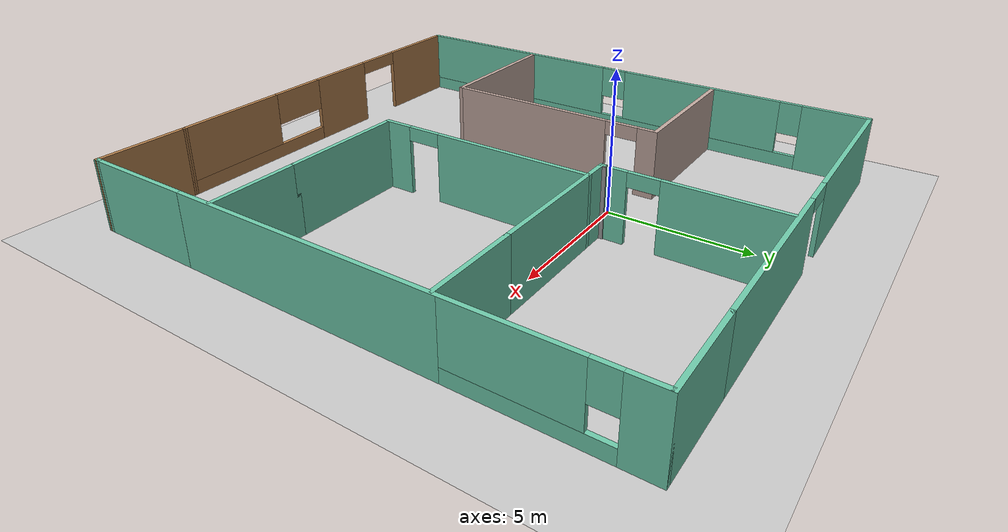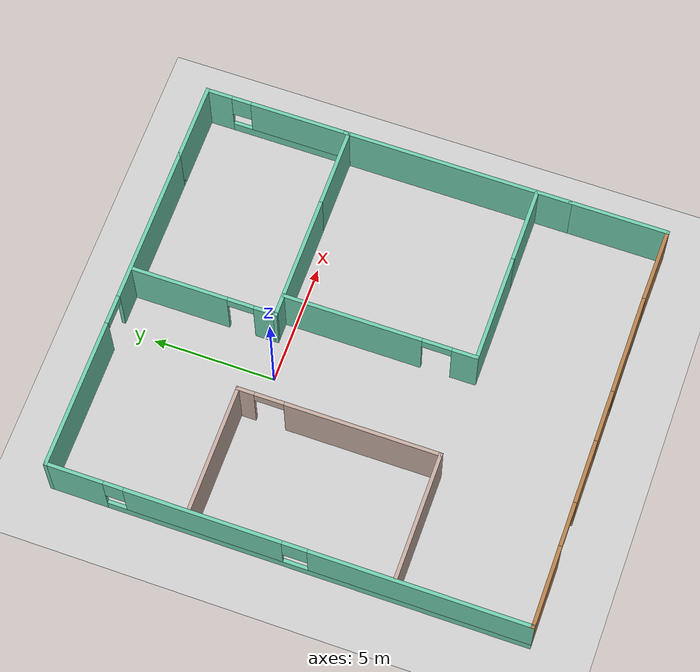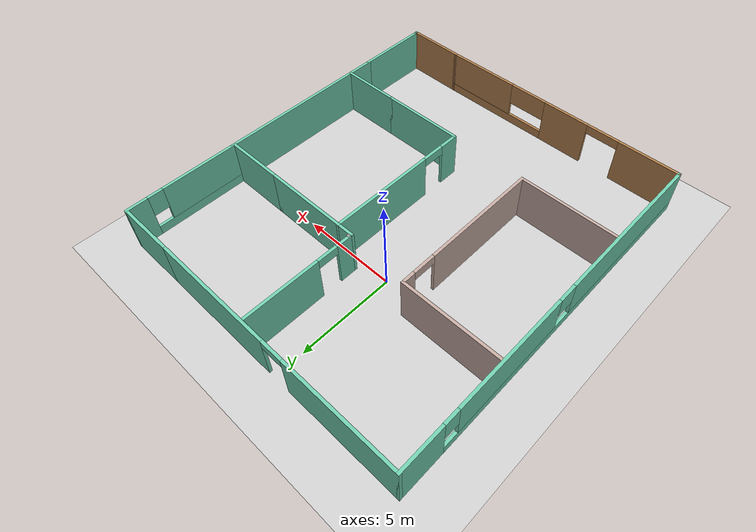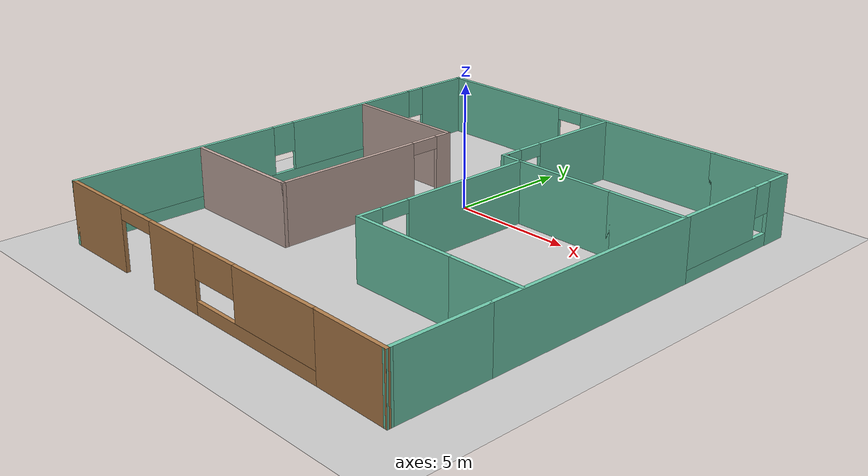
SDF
<sdf version="1.6">
 <world name="default">
  <light name="sun" type="directional">
   <pose>0 0 10 0 -0 0</pose>
   <diffuse>0.8 0.8 0.8 1</diffuse>
   <specular>0.2 0.2 0.2 1</specular>
   <attenuation>
    <range>1000</range>
    <constant>0.9</constant>
    <linear>0.01</linear>
    <quadratic>0.001</quadratic>
   </attenuation>
   <direction>-0.5 0.1 -0.9</direction>
  </light>
  <model name="ground_plane">
   <static>1</static>
   <link name="link">
    <collision name="collision">
     <geometry><plane><normal>0 0 1</normal><size>100 100</size></plane></geometry>
     <surface>
      <contact><collide_bitmask>65535</collide_bitmask></contact>
      <friction><ode><mu>100</mu><mu2>50</mu2></ode></friction>
     </surface>
    </collision>
    <visual name="visual">
     <cast_shadows>0</cast_shadows>
     <geometry><plane><normal>0 0 1</normal><size>100 100</size></plane></geometry>
     <material>
      <script><uri>file://media/materials/scripts/gazebo.material</uri><name>Gazebo/Grey</name></script>
     </material>
    </visual>
   </link>
  </model>
  <gravity>0 0 -9.8</gravity>
  <magnetic_field>6e-06 2.3e-05 -4.2e-05</magnetic_field>
  <atmosphere type="adiabatic"/>
  <physics name="default_physics" default="0" type="ode">
   <max_step_size>0.001</max_step_size>
   <real_time_factor>1</real_time_factor>
   <real_time_update_rate>1000</real_time_update_rate>
  </physics>
  <scene><ambient>0.4 0.4 0.4 1</ambient><background>0.7 0.7 0.7 1</background><shadows>1</shadows></scene>
  <audio><device>default</device></audio>
  <spherical_coordinates>
   <surface_model>EARTH_WGS84</surface_model>
   <latitude_deg>0</latitude_deg>
   <longitude_deg>0</longitude_deg>
   <elevation>0</elevation>
   <heading_deg>0</heading_deg>
  </spherical_coordinates>
  <model name="building">
   <pose>1.49212 -3.13616 0 0 -0 0</pose>
   <link name="Wall_1">
    <pose>-1.5506 9.5756 0 0 -0 0</pose>
    <visual name="Wall_1_Visual_0">
     <pose>-3.90949 0 1.25 0 -0 0</pose>
     <geometry><box><size>6.18102 0.15 2.5</size></box></geometry>
     <material>
      <script><uri>file://media/materials/scripts/gazebo.material</uri><name>Gazebo/Grey</name></script>
      <ambient>0.435294 0.796078 0.67451 1</ambient>
     </material>
     <meta><layer>0</layer></meta>
    </visual>
    <collision name="Wall_1_Collision_0">
     <geometry><box><size>6.18102 0.15 2.5</size></box></geometry>
     <pose>-3.90949 0 1.25 0 -0 0</pose>
    </collision>
    <visual name="Wall_1_Visual_1">
     <pose>3.69051 0 1.25 0 -0 0</pose>
     <geometry><box><size>6.61898 0.15 2.5</size></box></geometry>
     <material>
      <script><uri>file://media/materials/scripts/gazebo.material</uri><name>Gazebo/Grey</name></script>
      <ambient>0.435294 0.796078 0.67451 1</ambient>
     </material>
     <meta><layer>0</layer></meta>
    </visual>
    <collision name="Wall_1_Collision_1">
     <geometry><box><size>6.61898 0.15 2.5</size></box></geometry>
     <pose>3.69051 0 1.25 0 -0 0</pose>
    </collision>
    <visual name="Wall_1_Visual_2">
     <pose>-0.218983 0 2.25 0 -0 0</pose>
     <geometry><box><size>1.2 0.15 0.5</size></box></geometry>
     <material>
      <script><uri>file://media/materials/scripts/gazebo.material</uri><name>Gazebo/Grey</name></script>
      <ambient>0.435294 0.796078 0.67451 1</ambient>
     </material>
     <meta><layer>0</layer></meta>
    </visual>
    <collision name="Wall_1_Collision_2">
     <geometry><box><size>1.2 0.15 0.5</size></box></geometry>
     <pose>-0.218983 0 2.25 0 -0 0</pose>
    </collision>
   </link>
   <link name="Wall_16">
    <pose>-1.5506 -9.5244 0 0 -0 0</pose>
    <visual name="Wall_16_Visual_0">
     <pose>-5.32538 0 1.25 0 -0 0</pose>
     <geometry><box><size>3.34923 0.15 2.5</size></box></geometry>
     <material>
      <script><uri>file://media/materials/scripts/gazebo.material</uri><name>Gazebo/Wood</name></script>
      <ambient>1 1 1 1</ambient>
     </material>
     <meta><layer>0</layer></meta>
    </visual>
    <collision name="Wall_16_Collision_0">
     <geometry><box><size>3.34923 0.15 2.5</size></box></geometry>
     <pose>-5.32538 0 1.25 0 -0 0</pose>
    </collision>
    <visual name="Wall_16_Visual_1">
     <pose>-0.542656 0 1.25 0 -0 0</pose>
     <geometry><box><size>2.60823 0.15 2.5</size></box></geometry>
     <material>
      <script><uri>file://media/materials/scripts/gazebo.material</uri><name>Gazebo/Wood</name></script>
      <ambient>1 1 1 1</ambient>
     </material>
     <meta><layer>0</layer></meta>
    </visual>
    <collision name="Wall_16_Collision_1">
     <geometry><box><size>2.60823 0.15 2.5</size></box></geometry>
     <pose>-0.542656 0 1.25 0 -0 0</pose>
    </collision>
    <visual name="Wall_16_Visual_2">
     <pose>3.88073 0 0.25 0 -0 0</pose>
     <geometry><box><size>6.23854 0.15 0.5</size></box></geometry>
     <material>
      <script><uri>file://media/materials/scripts/gazebo.material</uri><name>Gazebo/Wood</name></script>
      <ambient>1 1 1 1</ambient>
     </material>
     <meta><layer>0</layer></meta>
    </visual>
    <collision name="Wall_16_Collision_2">
     <geometry><box><size>6.23854 0.15 0.5</size></box></geometry>
     <pose>3.88073 0 0.25 0 -0 0</pose>
    </collision>
    <visual name="Wall_16_Visual_3">
     <pose>4.94573 0 1.5 0 -0 0</pose>
     <geometry><box><size>4.10853 0.15 2</size></box></geometry>
     <material>
      <script><uri>file://media/materials/scripts/gazebo.material</uri><name>Gazebo/Wood</name></script>
      <ambient>1 1 1 1</ambient>
     </material>
     <meta><layer>0</layer></meta>
    </visual>
    <collision name="Wall_16_Collision_3">
     <geometry><box><size>4.10853 0.15 2</size></box></geometry>
     <pose>4.94573 0 1.5 0 -0 0</pose>
    </collision>
    <visual name="Wall_16_Visual_4">
     <pose>1.82646 0 1.9 0 -0 0</pose>
     <geometry><box><size>2.13001 0.15 1.2</size></box></geometry>
     <material>
      <script><uri>file://media/materials/scripts/gazebo.material</uri><name>Gazebo/Wood</name></script>
      <ambient>1 1 1 1</ambient>
     </material>
     <meta><layer>0</layer></meta>
    </visual>
    <collision name="Wall_16_Collision_4">
     <geometry><box><size>2.13001 0.15 1.2</size></box></geometry>
     <pose>1.82646 0 1.9 0 -0 0</pose>
    </collision>
    <visual name="Wall_16_Visual_5">
     <pose>-2.74877 0 2.25 0 -0 0</pose>
     <geometry><box><size>1.804 0.15 0.5</size></box></geometry>
     <material>
      <script><uri>file://media/materials/scripts/gazebo.material</uri><name>Gazebo/Wood</name></script>
      <ambient>1 1 1 1</ambient>
     </material>
     <meta><layer>0</layer></meta>
    </visual>
    <collision name="Wall_16_Collision_5">
     <geometry><box><size>1.804 0.15 0.5</size></box></geometry>
     <pose>-2.74877 0 2.25 0 -0 0</pose>
    </collision>
   </link>
   <link name="Wall_25">
    <collision name="Wall_25_Collision">
     <geometry><box><size>5.25 0.15 2.5</size></box></geometry>
     <pose>0 0 1.25 0 -0 0</pose>
    </collision>
    <visual name="Wall_25_Visual">
     <pose>0 0 1.25 0 -0 0</pose>
     <geometry><box><size>5.25 0.15 2.5</size></box></geometry>
     <material>
      <script><uri>file://media/materials/scripts/gazebo.material</uri><name>Gazebo/Grey</name></script>
      <ambient>0.760784 0.662745 0.627451 1</ambient>
     </material>
     <meta><layer>0</layer></meta>
    </visual>
    <pose>-5.79475 3.883 0 0 -0 3.14159</pose>
   </link>
   <link name="Wall_27">
    <collision name="Wall_27_Collision">
     <geometry><box><size>4.5 0.15 2.5</size></box></geometry>
     <pose>0 0 1.25 0 -0 0</pose>
    </collision>
    <visual name="Wall_27_Visual">
     <pose>0 0 1.25 0 -0 0</pose>
     <geometry><box><size>4.5 0.15 2.5</size></box></geometry>
     <material>
      <script><uri>file://media/materials/scripts/gazebo.material</uri><name>Gazebo/Grey</name></script>
      <ambient>0.435294 0.796078 0.67451 1</ambient>
     </material>
     <meta><layer>0</layer></meta>
    </visual>
    <pose>3.14247 3.59795 0 0 -0 0</pose>
   </link>
   <link name="Wall_29">
    <pose>-3.24475 -0.167004 0 0 -0 -1.5708</pose>
    <visual name="Wall_29_Visual_0">
     <pose>-3.75287 0 1.25 0 -0 0</pose>
     <geometry><box><size>0.744252 0.15 2.5</size></box></geometry>
     <material>
      <script><uri>file://media/materials/scripts/gazebo.material</uri><name>Gazebo/Grey</name></script>
      <ambient>0.760784 0.662745 0.627451 1</ambient>
     </material>
     <meta><layer>0</layer></meta>
    </visual>
    <collision name="Wall_29_Collision_0">
     <geometry><box><size>0.744252 0.15 2.5</size></box></geometry>
     <pose>-3.75287 0 1.25 0 -0 0</pose>
    </collision>
    <visual name="Wall_29_Visual_1">
     <pose>0.972126 0 1.25 0 -0 0</pose>
     <geometry><box><size>6.30575 0.15 2.5</size></box></geometry>
     <material>
      <script><uri>file://media/materials/scripts/gazebo.material</uri><name>Gazebo/Grey</name></script>
      <ambient>0.760784 0.662745 0.627451 1</ambient>
     </material>
     <meta><layer>0</layer></meta>
    </visual>
    <collision name="Wall_29_Collision_1">
     <geometry><box><size>6.30575 0.15 2.5</size></box></geometry>
     <pose>0.972126 0 1.25 0 -0 0</pose>
    </collision>
    <visual name="Wall_29_Visual_2">
     <pose>-2.78075 0 2.25 0 -0 0</pose>
     <geometry><box><size>1.2 0.15 0.5</size></box></geometry>
     <material>
      <script><uri>file://media/materials/scripts/gazebo.material</uri><name>Gazebo/Grey</name></script>
      <ambient>0.760784 0.662745 0.627451 1</ambient>
     </material>
     <meta><layer>0</layer></meta>
    </visual>
    <collision name="Wall_29_Collision_2">
     <geometry><box><size>1.2 0.15 0.5</size></box></geometry>
     <pose>-2.78075 0 2.25 0 -0 0</pose>
    </collision>
   </link>
   <link name="Wall_30">
    <collision name="Wall_30_Collision">
     <geometry><box><size>5.25 0.15 2.5</size></box></geometry>
     <pose>0 0 1.25 0 -0 0</pose>
    </collision>
    <visual name="Wall_30_Visual">
     <pose>0 0 1.25 0 -0 0</pose>
     <geometry><box><size>5.25 0.15 2.5</size></box></geometry>
     <material>
      <script><uri>file://media/materials/scripts/gazebo.material</uri><name>Gazebo/Grey</name></script>
      <ambient>0.760784 0.662745 0.627451 1</ambient>
     </material>
     <meta><layer>0</layer></meta>
    </visual>
    <pose>-5.79475 -4.217 0 0 -0 3.14159</pose>
   </link>
   <link name="Wall_32">
    <pose>0.96747 -0.327048 0 0 -0 -1.5708</pose>
    <visual name="Wall_32_Visual_0">
     <pose>-1.13698 0 1.25 0 -0 0</pose>
     <geometry><box><size>5.72605 0.15 2.5</size></box></geometry>
     <material>
      <script><uri>file://media/materials/scripts/gazebo.material</uri><name>Gazebo/Grey</name></script>
      <ambient>0.435294 0.796078 0.67451 1</ambient>
     </material>
     <meta><layer>0</layer></meta>
    </visual>
    <collision name="Wall_32_Collision_0">
     <geometry><box><size>5.72605 0.15 2.5</size></box></geometry>
     <pose>-1.13698 0 1.25 0 -0 0</pose>
    </collision>
    <visual name="Wall_32_Visual_1">
     <pose>3.46302 0 1.25 0 -0 0</pose>
     <geometry><box><size>1.07395 0.15 2.5</size></box></geometry>
     <material>
      <script><uri>file://media/materials/scripts/gazebo.material</uri><name>Gazebo/Grey</name></script>
      <ambient>0.435294 0.796078 0.67451 1</ambient>
     </material>
     <meta><layer>0</layer></meta>
    </visual>
    <collision name="Wall_32_Collision_1">
     <geometry><box><size>1.07395 0.15 2.5</size></box></geometry>
     <pose>3.46302 0 1.25 0 -0 0</pose>
    </collision>
    <visual name="Wall_32_Visual_2">
     <pose>2.32605 0 2.25 0 -0 0</pose>
     <geometry><box><size>1.2 0.15 0.5</size></box></geometry>
     <material>
      <script><uri>file://media/materials/scripts/gazebo.material</uri><name>Gazebo/Grey</name></script>
      <ambient>0.435294 0.796078 0.67451 1</ambient>
     </material>
     <meta><layer>0</layer></meta>
    </visual>
    <collision name="Wall_32_Collision_2">
     <geometry><box><size>1.2 0.15 0.5</size></box></geometry>
     <pose>2.32605 0 2.25 0 -0 0</pose>
    </collision>
   </link>
   <link name="Wall_33">
    <collision name="Wall_33_Collision">
     <geometry><box><size>4.5 0.15 2.5</size></box></geometry>
     <pose>0 0 1.25 0 -0 0</pose>
    </collision>
    <visual name="Wall_33_Visual">
     <pose>0 0 1.25 0 -0 0</pose>
     <geometry><box><size>4.5 0.15 2.5</size></box></geometry>
     <material>
      <script><uri>file://media/materials/scripts/gazebo.material</uri><name>Gazebo/Grey</name></script>
      <ambient>0.435294 0.796078 0.67451 1</ambient>
     </material>
     <meta><layer>0</layer></meta>
    </visual>
    <pose>3.14247 -4.25205 0 0 -0 0</pose>
   </link>
   <link name="Wall_38">
    <collision name="Wall_38_Collision">
     <geometry><box><size>3.25 0.15 2.5</size></box></geometry>
     <pose>0 0 1.25 0 -0 0</pose>
    </collision>
    <visual name="Wall_38_Visual">
     <pose>0 0 1.25 0 -0 0</pose>
     <geometry><box><size>3.25 0.15 2.5</size></box></geometry>
     <material>
      <script><uri>file://media/materials/scripts/gazebo.material</uri><name>Gazebo/Grey</name></script>
      <ambient>0.435294 0.796078 0.67451 1</ambient>
     </material>
     <meta><layer>0</layer></meta>
    </visual>
    <pose>6.9244 9.5756 0 0 -0 0</pose>
   </link>
   <link name="Wall_39">
    <pose>8.4744 6.6506 0 0 -0 -1.5708</pose>
    <visual name="Wall_39_Visual_0">
     <pose>-2.43267 0 1.25 0 -0 0</pose>
     <geometry><box><size>1.13466 0.15 2.5</size></box></geometry>
     <material>
      <script><uri>file://media/materials/scripts/gazebo.material</uri><name>Gazebo/Grey</name></script>
      <ambient>0.435294 0.796078 0.67451 1</ambient>
     </material>
     <meta><layer>0</layer></meta>
    </visual>
    <collision name="Wall_39_Collision_0">
     <geometry><box><size>1.13466 0.15 2.5</size></box></geometry>
     <pose>-2.43267 0 1.25 0 -0 0</pose>
    </collision>
    <visual name="Wall_39_Visual_1">
     <pose>0.567328 0 0.25 0 -0 0</pose>
     <geometry><box><size>4.86534 0.15 0.5</size></box></geometry>
     <material>
      <script><uri>file://media/materials/scripts/gazebo.material</uri><name>Gazebo/Grey</name></script>
      <ambient>0.435294 0.796078 0.67451 1</ambient>
     </material>
     <meta><layer>0</layer></meta>
    </visual>
    <collision name="Wall_39_Collision_1">
     <geometry><box><size>4.86534 0.15 0.5</size></box></geometry>
     <pose>0.567328 0 0.25 0 -0 0</pose>
    </collision>
    <visual name="Wall_39_Visual_2">
     <pose>0.967328 0 1.5 0 -0 0</pose>
     <geometry><box><size>4.06534 0.15 2</size></box></geometry>
     <material>
      <script><uri>file://media/materials/scripts/gazebo.material</uri><name>Gazebo/Grey</name></script>
      <ambient>0.435294 0.796078 0.67451 1</ambient>
     </material>
     <meta><layer>0</layer></meta>
    </visual>
    <collision name="Wall_39_Collision_2">
     <geometry><box><size>4.06534 0.15 2</size></box></geometry>
     <pose>0.967328 0 1.5 0 -0 0</pose>
    </collision>
    <visual name="Wall_39_Visual_3">
     <pose>-1.46534 0 1.9 0 -0 0</pose>
     <geometry><box><size>0.8 0.15 1.2</size></box></geometry>
     <material>
      <script><uri>file://media/materials/scripts/gazebo.material</uri><name>Gazebo/Grey</name></script>
      <ambient>0.435294 0.796078 0.67451 1</ambient>
     </material>
     <meta><layer>0</layer></meta>
    </visual>
    <collision name="Wall_39_Collision_3">
     <geometry><box><size>0.8 0.15 1.2</size></box></geometry>
     <pose>-1.46534 0 1.9 0 -0 0</pose>
    </collision>
   </link>
   <link name="Wall_40">
    <collision name="Wall_40_Collision">
     <geometry><box><size>9.5 0.15 2.5</size></box></geometry>
     <pose>0 0 1.25 0 -0 0</pose>
    </collision>
    <visual name="Wall_40_Visual">
     <pose>0 0 1.25 0 -0 0</pose>
     <geometry><box><size>9.5 0.15 2.5</size></box></geometry>
     <material>
      <script><uri>file://media/materials/scripts/gazebo.material</uri><name>Gazebo/Grey</name></script>
      <ambient>0.435294 0.796078 0.67451 1</ambient>
     </material>
     <meta><layer>0</layer></meta>
    </visual>
    <pose>8.4744 -0.9494 0 0 -0 -1.5708</pose>
   </link>
   <link name="Wall_42">
    <collision name="Wall_42_Collision">
     <geometry><box><size>4 0.15 2.5</size></box></geometry>
     <pose>0 0 1.25 0 -0 0</pose>
    </collision>
    <visual name="Wall_42_Visual">
     <pose>0 0 1.25 0 -0 0</pose>
     <geometry><box><size>4 0.15 2.5</size></box></geometry>
     <material>
      <script><uri>file://media/materials/scripts/gazebo.material</uri><name>Gazebo/Grey</name></script>
      <ambient>0.435294 0.796078 0.67451 1</ambient>
     </material>
     <meta><layer>0</layer></meta>
    </visual>
    <pose>8.4744 -7.5494 0 0 -0 -1.5708</pose>
   </link>
   <link name="Wall_43">
    <collision name="Wall_43_Collision">
     <geometry><box><size>0.25 0.15 2.5</size></box></geometry>
     <pose>0 0 1.25 0 -0 0</pose>
    </collision>
    <visual name="Wall_43_Visual">
     <pose>0 0 1.25 0 -0 0</pose>
     <geometry><box><size>0.25 0.15 2.5</size></box></geometry>
     <material>
      <script><uri>file://media/materials/scripts/gazebo.material</uri><name>Gazebo/Grey</name></script>
      <ambient>0.435294 0.796078 0.67451 1</ambient>
     </material>
     <meta><layer>0</layer></meta>
    </visual>
    <pose>8.4744 -9.5244 0 0 -0 -1.5708</pose>
   </link>
   <link name="Wall_44">
    <collision name="Wall_44_Collision">
     <geometry><box><size>3.2504 0.15 2.5</size></box></geometry>
     <pose>0 0 1.25 0 -0 0</pose>
    </collision>
    <visual name="Wall_44_Visual">
     <pose>0 0 1.25 0 -0 0</pose>
     <geometry><box><size>3.2504 0.15 2.5</size></box></geometry>
     <material>
      <script><uri>file://media/materials/scripts/gazebo.material</uri><name>Gazebo/Wood</name></script>
      <ambient>1 1 1 1</ambient>
     </material>
     <meta><layer>0</layer></meta>
    </visual>
    <pose>6.9244 -9.5494 0 0 -0 3.12547</pose>
   </link>
   <link name="Wall_48">
    <collision name="Wall_48_Collision">
     <geometry><box><size>3.25 0.15 2.5</size></box></geometry>
     <pose>0 0 1.25 0 -0 0</pose>
    </collision>
    <visual name="Wall_48_Visual">
     <pose>0 0 1.25 0 -0 0</pose>
     <geometry><box><size>3.25 0.15 2.5</size></box></geometry>
     <material>
      <script><uri>file://media/materials/scripts/gazebo.material</uri><name>Gazebo/Grey</name></script>
      <ambient>0.435294 0.796078 0.67451 1</ambient>
     </material>
     <meta><layer>0</layer></meta>
    </visual>
    <pose>6.86747 3.59795 0 0 -0 0</pose>
   </link>
   <link name="Wall_50">
    <collision name="Wall_50_Collision">
     <geometry><box><size>3.25 0.15 2.5</size></box></geometry>
     <pose>0 0 1.25 0 -0 0</pose>
    </collision>
    <visual name="Wall_50_Visual">
     <pose>0 0 1.25 0 -0 0</pose>
     <geometry><box><size>3.25 0.15 2.5</size></box></geometry>
     <material>
      <script><uri>file://media/materials/scripts/gazebo.material</uri><name>Gazebo/Grey</name></script>
      <ambient>0.435294 0.796078 0.67451 1</ambient>
     </material>
     <meta><layer>0</layer></meta>
    </visual>
    <pose>6.86747 -4.25205 0 0 -0 0</pose>
   </link>
   <link name="Wall_54">
    <collision name="Wall_54_Collision">
     <geometry><box><size>0.15 0.15 2.5</size></box></geometry>
     <pose>0 0 1.25 0 -0 0</pose>
    </collision>
    <visual name="Wall_54_Visual">
     <pose>0 0 1.25 0 -0 0</pose>
     <geometry><box><size>0.15 0.15 2.5</size></box></geometry>
     <material>
      <script><uri>file://media/materials/scripts/gazebo.material</uri><name>Gazebo/Grey</name></script>
      <ambient>1 1 1 1</ambient>
     </material>
     <meta><layer>0</layer></meta>
    </visual>
    <pose>0.16132 3.73423 0 0 -0 0</pose>
   </link>
   <link name="Wall_55">
    <collision name="Wall_55_Collision">
     <geometry><box><size>0.15 0.15 2.5</size></box></geometry>
     <pose>0 0 1.25 0 -0 0</pose>
    </collision>
    <visual name="Wall_55_Visual">
     <pose>0 0 1.25 0 -0 0</pose>
     <geometry><box><size>0.15 0.15 2.5</size></box></geometry>
     <material>
      <script><uri>file://media/materials/scripts/gazebo.material</uri><name>Gazebo/Grey</name></script>
      <ambient>1 1 1 1</ambient>
     </material>
     <meta><layer>0</layer></meta>
    </visual>
    <pose>0.16132 3.73423 0 0 -0 0</pose>
   </link>
   <link name="Wall_56">
    <collision name="Wall_56_Collision">
     <geometry><box><size>0.15 0.15 2.5</size></box></geometry>
     <pose>0 0 1.25 0 -0 0</pose>
    </collision>
    <visual name="Wall_56_Visual">
     <pose>0 0 1.25 0 -0 0</pose>
     <geometry><box><size>0.15 0.15 2.5</size></box></geometry>
     <material>
      <script><uri>file://media/materials/scripts/gazebo.material</uri><name>Gazebo/Grey</name></script>
      <ambient>0.435294 0.796078 0.67451 1</ambient>
     </material>
     <meta><layer>0</layer></meta>
    </visual>
    <pose>0.16132 3.73423 0 0 -0 0</pose>
   </link>
   <link name="Wall_58">
    <collision name="Wall_58_Collision">
     <geometry><box><size>1 0.15 2.5</size></box></geometry>
     <pose>0 0 1.25 0 -0 0</pose>
    </collision>
    <visual name="Wall_58_Visual">
     <pose>0 0 1.25 0 -0 0</pose>
     <geometry><box><size>1 0.15 2.5</size></box></geometry>
     <material>
      <script><uri>file://media/materials/scripts/gazebo.material</uri><name>Gazebo/Grey</name></script>
      <ambient>0.435294 0.796078 0.67451 1</ambient>
     </material>
     <meta><layer>0</layer></meta>
    </visual>
    <pose>0.54247 3.59795 0 0 -0 3.14159</pose>
   </link>
   <link name="Wall_59">
    <pose>0.11747 6.52295 0 0 -0 1.5708</pose>
    <visual name="Wall_59_Visual_0">
     <pose>-2.51722 0 1.25 0 -0 0</pose>
     <geometry><box><size>0.965559 0.15 2.5</size></box></geometry>
     <material>
      <script><uri>file://media/materials/scripts/gazebo.material</uri><name>Gazebo/Grey</name></script>
      <ambient>0.435294 0.796078 0.67451 1</ambient>
     </material>
     <meta><layer>0</layer></meta>
    </visual>
    <collision name="Wall_59_Collision_0">
     <geometry><box><size>0.965559 0.15 2.5</size></box></geometry>
     <pose>-2.51722 0 1.25 0 -0 0</pose>
    </collision>
    <visual name="Wall_59_Visual_1">
     <pose>1.02278 0 1.25 0 -0 0</pose>
     <geometry><box><size>3.95444 0.15 2.5</size></box></geometry>
     <material>
      <script><uri>file://media/materials/scripts/gazebo.material</uri><name>Gazebo/Grey</name></script>
      <ambient>0.435294 0.796078 0.67451 1</ambient>
     </material>
     <meta><layer>0</layer></meta>
    </visual>
    <collision name="Wall_59_Collision_1">
     <geometry><box><size>3.95444 0.15 2.5</size></box></geometry>
     <pose>1.02278 0 1.25 0 -0 0</pose>
    </collision>
    <visual name="Wall_59_Visual_2">
     <pose>-1.49444 0 2.25 0 -0 0</pose>
     <geometry><box><size>1.08 0.15 0.5</size></box></geometry>
     <material>
      <script><uri>file://media/materials/scripts/gazebo.material</uri><name>Gazebo/Grey</name></script>
      <ambient>0.435294 0.796078 0.67451 1</ambient>
     </material>
     <meta><layer>0</layer></meta>
    </visual>
    <collision name="Wall_59_Collision_2">
     <geometry><box><size>1.08 0.15 0.5</size></box></geometry>
     <pose>-1.49444 0 2.25 0 -0 0</pose>
    </collision>
   </link>
   <link name="Wall_6">
    <pose>-8.4756 0.0256 0 0 -0 -1.5708</pose>
    <visual name="Wall_6_Visual_0">
     <pose>-8.43415 0 1.25 0 -0 0</pose>
     <geometry><box><size>2.3817 0.15 2.5</size></box></geometry>
     <material>
      <script><uri>file://media/materials/scripts/gazebo.material</uri><name>Gazebo/Grey</name></script>
      <ambient>0.435294 0.796078 0.67451 1</ambient>
     </material>
     <meta><layer>0</layer></meta>
    </visual>
    <collision name="Wall_6_Collision_0">
     <geometry><box><size>2.3817 0.15 2.5</size></box></geometry>
     <pose>-8.43415 0 1.25 0 -0 0</pose>
    </collision>
    <visual name="Wall_6_Visual_1">
     <pose>1.19085 0 0.25 0 -0 0</pose>
     <geometry><box><size>16.8683 0.15 0.5</size></box></geometry>
     <material>
      <script><uri>file://media/materials/scripts/gazebo.material</uri><name>Gazebo/Grey</name></script>
      <ambient>0.435294 0.796078 0.67451 1</ambient>
     </material>
     <meta><layer>0</layer></meta>
    </visual>
    <collision name="Wall_6_Collision_1">
     <geometry><box><size>16.8683 0.15 0.5</size></box></geometry>
     <pose>1.19085 0 0.25 0 -0 0</pose>
    </collision>
    <visual name="Wall_6_Visual_2">
     <pose>-3.30271 0 1.5 0 -0 0</pose>
     <geometry><box><size>6.28118 0.15 2</size></box></geometry>
     <material>
      <script><uri>file://media/materials/scripts/gazebo.material</uri><name>Gazebo/Grey</name></script>
      <ambient>0.435294 0.796078 0.67451 1</ambient>
     </material>
     <meta><layer>0</layer></meta>
    </visual>
    <collision name="Wall_6_Collision_2">
     <geometry><box><size>6.28118 0.15 2</size></box></geometry>
     <pose>-3.30271 0 1.5 0 -0 0</pose>
    </collision>
    <visual name="Wall_6_Visual_3">
     <pose>5.23144 0 1.5 0 -0 0</pose>
     <geometry><box><size>8.78712 0.15 2</size></box></geometry>
     <material>
      <script><uri>file://media/materials/scripts/gazebo.material</uri><name>Gazebo/Grey</name></script>
      <ambient>0.435294 0.796078 0.67451 1</ambient>
     </material>
     <meta><layer>0</layer></meta>
    </visual>
    <collision name="Wall_6_Collision_3">
     <geometry><box><size>8.78712 0.15 2</size></box></geometry>
     <pose>5.23144 0 1.5 0 -0 0</pose>
    </collision>
    <visual name="Wall_6_Visual_4">
     <pose>-6.8433 0 1.9 0 -0 0</pose>
     <geometry><box><size>0.8 0.15 1.2</size></box></geometry>
     <material>
      <script><uri>file://media/materials/scripts/gazebo.material</uri><name>Gazebo/Grey</name></script>
      <ambient>0.435294 0.796078 0.67451 1</ambient>
     </material>
     <meta><layer>0</layer></meta>
    </visual>
    <collision name="Wall_6_Collision_4">
     <geometry><box><size>0.8 0.15 1.2</size></box></geometry>
     <pose>-6.8433 0 1.9 0 -0 0</pose>
    </collision>
    <visual name="Wall_6_Visual_5">
     <pose>0.337877 0 1.9 0 -0 0</pose>
     <geometry><box><size>1 0.15 1.2</size></box></geometry>
     <material>
      <script><uri>file://media/materials/scripts/gazebo.material</uri><name>Gazebo/Grey</name></script>
      <ambient>0.435294 0.796078 0.67451 1</ambient>
     </material>
     <meta><layer>0</layer></meta>
    </visual>
    <collision name="Wall_6_Collision_5">
     <geometry><box><size>1 0.15 1.2</size></box></geometry>
     <pose>0.337877 0 1.9 0 -0 0</pose>
    </collision>
   </link>
   <static>1</static>
  </model>
 </world>
</sdf>
